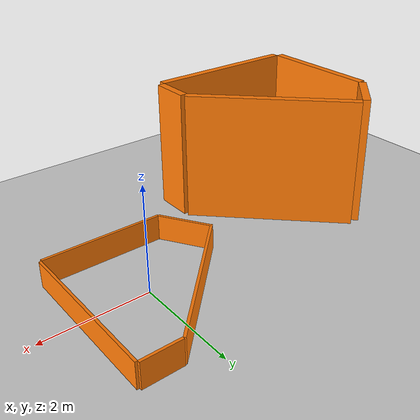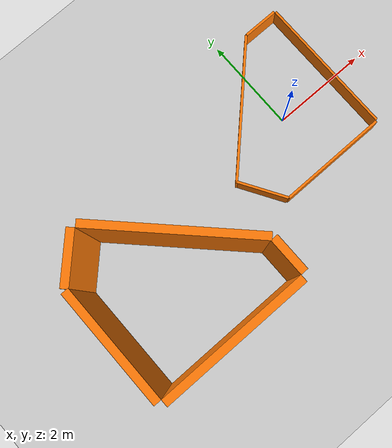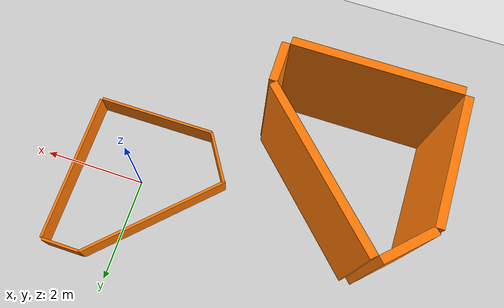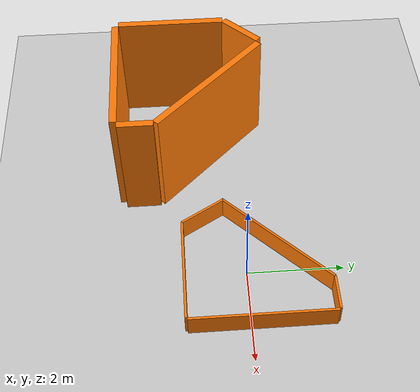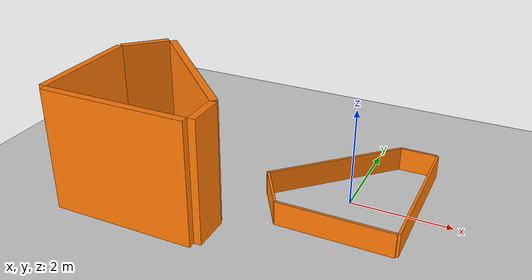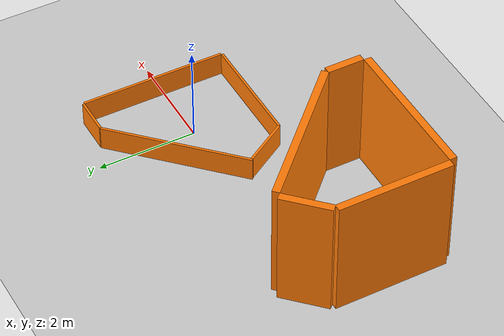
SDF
<sdf version="1.6">
 <world name="default">
  <light name="sun" type="directional">
   <pose>0 0 10 0 -0 0</pose>
   <diffuse>0.8 0.8 0.8 1</diffuse>
   <specular>0.2 0.2 0.2 1</specular>
   <attenuation>
    <range>1000</range>
    <constant>0.9</constant>
    <linear>0.01</linear>
    <quadratic>0.001</quadratic>
   </attenuation>
   <direction>-0.5 0.1 -0.9</direction>
  </light>
  <model name="ground_plane">
   <static>1</static>
   <link name="link">
    <collision name="collision">
     <geometry><plane><normal>0 0 1</normal><size>100 100</size></plane></geometry>
     <surface>
      <contact><collide_bitmask>65535</collide_bitmask></contact>
      <friction><ode><mu>100</mu><mu2>50</mu2></ode></friction>
     </surface>
    </collision>
    <visual name="visual">
     <cast_shadows>0</cast_shadows>
     <geometry><plane><normal>0 0 1</normal><size>100 100</size></plane></geometry>
     <material>
      <script><uri>file://media/materials/scripts/gazebo.material</uri><name>Gazebo/Grey</name></script>
     </material>
    </visual>
   </link>
  </model>
  <gravity>0 0 -9.8</gravity>
  <magnetic_field>6e-06 2.3e-05 -4.2e-05</magnetic_field>
  <atmosphere type="adiabatic"/>
  <physics name="default_physics" default="0" type="ode">
   <max_step_size>0.001</max_step_size>
   <real_time_factor>1</real_time_factor>
   <real_time_update_rate>1000</real_time_update_rate>
  </physics>
  <scene><ambient>0.4 0.4 0.4 1</ambient><background>0.7 0.7 0.7 1</background><shadows>1</shadows></scene>
  <audio><device>default</device></audio>
  <spherical_coordinates>
   <surface_model>EARTH_WGS84</surface_model>
   <latitude_deg>0</latitude_deg>
   <longitude_deg>0</longitude_deg>
   <elevation>0</elevation>
   <heading_deg>0</heading_deg>
  </spherical_coordinates>
  <model name="slamopto">
   <pose>-0.164008 0.215626 0 0 -0 0</pose>
   <link name="Wall_10">
    <collision name="Wall_10_Collision">
     <geometry><box><size>0.737 0.05 0.5</size></box></geometry>
     <pose>0 0 0.25 0 -0 0</pose>
    </collision>
    <visual name="Wall_10_Visual">
     <pose>0 0 0.25 0 -0 0</pose>
     <geometry><box><size>0.737 0.05 0.5</size></box></geometry>
     <material>
      <script><uri>file://media/materials/scripts/gazebo.material</uri><name>Gazebo/Grey</name></script>
      <ambient>0.996078 0.47451 0.0196078 1</ambient>
     </material>
     <meta><layer>0</layer></meta>
    </visual>
    <pose>1.05241 1.49663 0 0 -0 3.14159</pose>
   </link>
   <link name="Wall_12">
    <collision name="Wall_12_Collision">
     <geometry><box><size>3 0.05 0.5</size></box></geometry>
     <pose>0 0 0.25 0 -0 0</pose>
    </collision>
    <visual name="Wall_12_Visual">
     <pose>0 0 0.25 0 -0 0</pose>
     <geometry><box><size>3 0.05 0.5</size></box></geometry>
     <material>
      <script><uri>file://media/materials/scripts/gazebo.material</uri><name>Gazebo/Grey</name></script>
      <ambient>0.996078 0.47451 0.0196078 1</ambient>
     </material>
     <meta><layer>0</layer></meta>
    </visual>
    <pose>-0.38957 0.436532 0 0 -0 -2.35619</pose>
   </link>
   <link name="Wall_14">
    <collision name="Wall_14_Collision">
     <geometry><box><size>1.04559 0.05 0.5</size></box></geometry>
     <pose>0 0 0.25 0 -0 0</pose>
    </collision>
    <visual name="Wall_14_Visual">
     <pose>0 0 0.25 0 -0 0</pose>
     <geometry><box><size>1.04559 0.05 0.5</size></box></geometry>
     <material>
      <script><uri>file://media/materials/scripts/gazebo.material</uri><name>Gazebo/Grey</name></script>
      <ambient>0.996078 0.47451 0.0196078 1</ambient>
     </material>
     <meta><layer>0</layer></meta>
    </visual>
    <pose>-1.15709 -1.04672 0 0 -0 -1.02125</pose>
   </link>
   <link name="Wall_6">
    <collision name="Wall_6_Collision">
     <geometry><box><size>2.3 0.05 0.5</size></box></geometry>
     <pose>0 0 0.25 0 -0 0</pose>
    </collision>
    <visual name="Wall_6_Visual">
     <pose>0 0 0.25 0 -0 0</pose>
     <geometry><box><size>2.3 0.05 0.5</size></box></geometry>
     <material>
      <script><uri>file://media/materials/scripts/gazebo.material</uri><name>Gazebo/Grey</name></script>
      <ambient>0.996078 0.47451 0.0196078 1</ambient>
     </material>
     <meta><layer>0</layer></meta>
    </visual>
    <pose>0.268194 -1.49663 0 0 -0 0</pose>
   </link>
   <link name="Wall_8">
    <collision name="Wall_8_Collision">
     <geometry><box><size>2.95 0.05 0.5</size></box></geometry>
     <pose>0 0 0.25 0 -0 0</pose>
    </collision>
    <visual name="Wall_8_Visual">
     <pose>0 0 0.25 0 -0 0</pose>
     <geometry><box><size>2.95 0.05 0.5</size></box></geometry>
     <material>
      <script><uri>file://media/materials/scripts/gazebo.material</uri><name>Gazebo/Grey</name></script>
      <ambient>0.996078 0.47451 0.0196078 1</ambient>
     </material>
     <meta><layer>0</layer></meta>
    </visual>
    <pose>1.44291 0.001727 0 0 -0 -1.5708</pose>
   </link>
   <static>1</static>
  </model>
  <model name="test">
   <pose>-3.56608 -0.978326 0 0 -0 0</pose>
   <link name="Wall_0">
    <collision name="Wall_0_Collision">
     <geometry><box><size>2.95 0.15 2.5</size></box></geometry>
     <pose>0 0 1.25 0 -0 0</pose>
    </collision>
    <visual name="Wall_0_Visual">
     <pose>0 0 1.25 0 -0 0</pose>
     <geometry><box><size>2.95 0.15 2.5</size></box></geometry>
     <material>
      <script><uri>file://media/materials/scripts/gazebo.material</uri><name>Gazebo/Grey</name></script>
      <ambient>0.996078 0.47451 0.0196078 1</ambient>
     </material>
     <meta><layer>0</layer></meta>
    </visual>
    <pose>-0.00086 -1.54396 0 0 -0 0</pose>
   </link>
   <link name="Wall_2">
    <collision name="Wall_2_Collision">
     <geometry><box><size>2.3 0.15 2.5</size></box></geometry>
     <pose>0 0 1.25 0 -0 0</pose>
    </collision>
    <visual name="Wall_2_Visual">
     <pose>0 0 1.25 0 -0 0</pose>
     <geometry><box><size>2.3 0.15 2.5</size></box></geometry>
     <material>
      <script><uri>file://media/materials/scripts/gazebo.material</uri><name>Gazebo/Grey</name></script>
      <ambient>0.996078 0.47451 0.0196078 1</ambient>
     </material>
     <meta><layer>0</layer></meta>
    </visual>
    <pose>-1.54889 -0.320694 0 0 -0 1.5708</pose>
   </link>
   <link name="Wall_4">
    <collision name="Wall_4_Collision">
     <geometry><box><size>1 0.15 2.5</size></box></geometry>
     <pose>0 0 1.25 0 -0 0</pose>
    </collision>
    <visual name="Wall_4_Visual">
     <pose>0 0 1.25 0 -0 0</pose>
     <geometry><box><size>1 0.15 2.5</size></box></geometry>
     <material>
      <script><uri>file://media/materials/scripts/gazebo.material</uri><name>Gazebo/Grey</name></script>
      <ambient>0.996078 0.47451 0.0196078 1</ambient>
     </material>
     <meta><layer>0</layer></meta>
    </visual>
    <pose>-1.17904 1.21237 0 0 -0 -2.35619</pose>
   </link>
   <link name="Wall_6">
    <collision name="Wall_6_Collision">
     <geometry><box><size>0.737 0.15 2.5</size></box></geometry>
     <pose>0 0 1.25 0 -0 0</pose>
    </collision>
    <visual name="Wall_6_Visual">
     <pose>0 0 1.25 0 -0 0</pose>
     <geometry><box><size>0.737 0.15 2.5</size></box></geometry>
     <material>
      <script><uri>file://media/materials/scripts/gazebo.material</uri><name>Gazebo/Grey</name></script>
      <ambient>0.996078 0.47451 0.0196078 1</ambient>
     </material>
     <meta><layer>0</layer></meta>
    </visual>
    <pose>1.54889 -1.10461 0 0 -0 -1.5708</pose>
   </link>
   <link name="Wall_8">
    <collision name="Wall_8_Collision">
     <geometry><box><size>3.2 0.15 2.5</size></box></geometry>
     <pose>0 0 1.25 0 -0 0</pose>
    </collision>
    <visual name="Wall_8_Visual">
     <pose>0 0 1.25 0 -0 0</pose>
     <geometry><box><size>3.2 0.15 2.5</size></box></geometry>
     <material>
      <script><uri>file://media/materials/scripts/gazebo.material</uri><name>Gazebo/Grey</name></script>
      <ambient>0.996078 0.47451 0.0196078 1</ambient>
     </material>
     <meta><layer>0</layer></meta>
    </visual>
    <pose>0.410693 0.42822 0 0 -0 -0.785398</pose>
   </link>
   <static>1</static>
  </model>
 </world>
</sdf>
